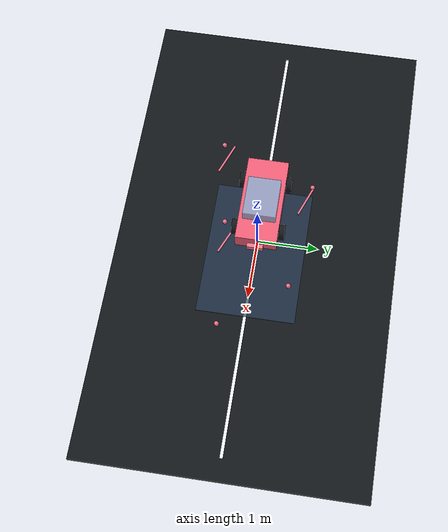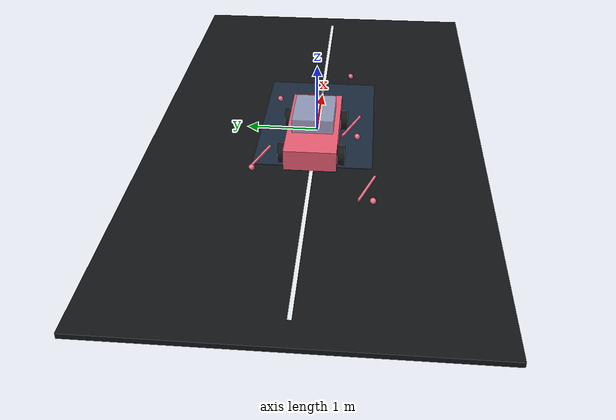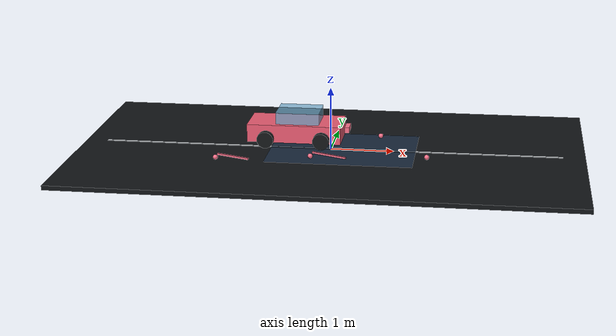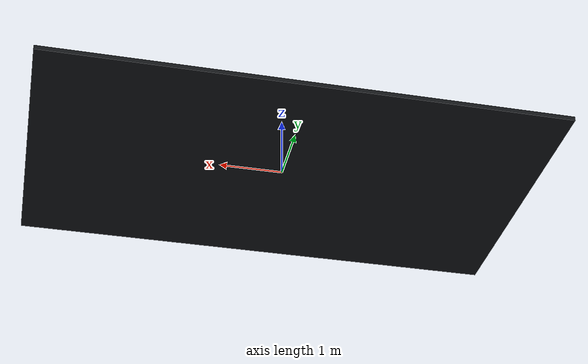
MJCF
<mujoco model="portfolio_vehicle_bev_rig">
  <compiler angle="radian" autolimits="true" />
  <option timestep="0.01" gravity="0 0 -9.81" />

  <asset>
    <material name="road_mat" rgba="0.07 0.08 0.09 1" />
    <material name="lane_mat" rgba="0.92 0.94 0.96 1" />
    <material name="vehicle_mat" rgba="0.92 0.36 0.45 1" />
    <material name="glass_mat" rgba="0.48 0.72 0.86 0.74" />
    <material name="flow_mat" rgba="0.98 0.45 0.55 1" />
    <material name="bev_mat" rgba="0.16 0.24 0.34 0.72" />
  </asset>

  <worldbody>
    <light name="key" pos="0 -4 6" dir="0 0.2 -1" diffuse="1 0.96 0.94" />
    <camera name="overview" pos="3.2 -6 4.3" xyaxes="0.88 0.47 0 -0.34 0.64 0.69" />

    <geom name="road" type="box" pos="0 0 -0.035" size="4 2.3 0.035" material="road_mat" />
    <geom name="center_lane" type="box" pos="0 0 0.006" size="3.65 0.025 0.004" material="lane_mat" contype="0" conaffinity="0" />
    <geom name="bev_patch" type="box" pos="0.2 0 0.012" size="1.15 0.8 0.006" material="bev_mat" contype="0" conaffinity="0" />

    <body name="ego_vehicle" pos="-0.55 0 0.24">
      <freejoint />
      <geom name="base" type="box" pos="0 0 0.08" size="0.74 0.34 0.14" material="vehicle_mat" density="420" />
      <geom name="cabin" type="box" pos="0.05 0 0.28" size="0.34 0.27 0.13" material="glass_mat" density="120" />
      <geom name="front_sensor" type="box" pos="0.82 0 0.12" size="0.035 0.13 0.045" material="flow_mat" density="80" />
      <geom name="front_left_wheel" type="cylinder" pos="0.44 0.38 0" quat="0.7071068 0.7071068 0 0" size="0.13 0.055" rgba="0.08 0.09 0.1 1" density="250" />
      <geom name="front_right_wheel" type="cylinder" pos="0.44 -0.38 0" quat="0.7071068 0.7071068 0 0" size="0.13 0.055" rgba="0.08 0.09 0.1 1" density="250" />
      <geom name="rear_left_wheel" type="cylinder" pos="-0.44 0.38 0" quat="0.7071068 0.7071068 0 0" size="0.13 0.055" rgba="0.08 0.09 0.1 1" density="250" />
      <geom name="rear_right_wheel" type="cylinder" pos="-0.44 -0.38 0" quat="0.7071068 0.7071068 0 0" size="0.13 0.055" rgba="0.08 0.09 0.1 1" density="250" />
    </body>

    <body name="feature_tracks" pos="0 0 0">
      <geom name="feature_1" type="sphere" pos="-1.7 -0.82 0.06" size="0.04" material="flow_mat" contype="0" conaffinity="0" />
      <geom name="feature_2" type="sphere" pos="-1.1 0.78 0.06" size="0.04" material="flow_mat" contype="0" conaffinity="0" />
      <geom name="feature_3" type="sphere" pos="-0.25 -0.58 0.06" size="0.04" material="flow_mat" contype="0" conaffinity="0" />
      <geom name="feature_4" type="sphere" pos="0.74 0.62 0.06" size="0.04" material="flow_mat" contype="0" conaffinity="0" />
      <geom name="feature_5" type="sphere" pos="1.55 -0.42 0.06" size="0.04" material="flow_mat" contype="0" conaffinity="0" />
      <geom name="vector_1" type="box" pos="-1.44 -0.74 0.055" size="0.28 0.014 0.014" quat="0.98 0 0 -0.18" material="flow_mat" contype="0" conaffinity="0" />
      <geom name="vector_2" type="box" pos="-0.83 0.7 0.055" size="0.28 0.014 0.014" quat="0.98 0 0 -0.18" material="flow_mat" contype="0" conaffinity="0" />
      <geom name="vector_3" type="box" pos="0.03 -0.49 0.055" size="0.3 0.014 0.014" quat="0.98 0 0 -0.2" material="flow_mat" contype="0" conaffinity="0" />
    </body>
  </worldbody>
</mujoco>
